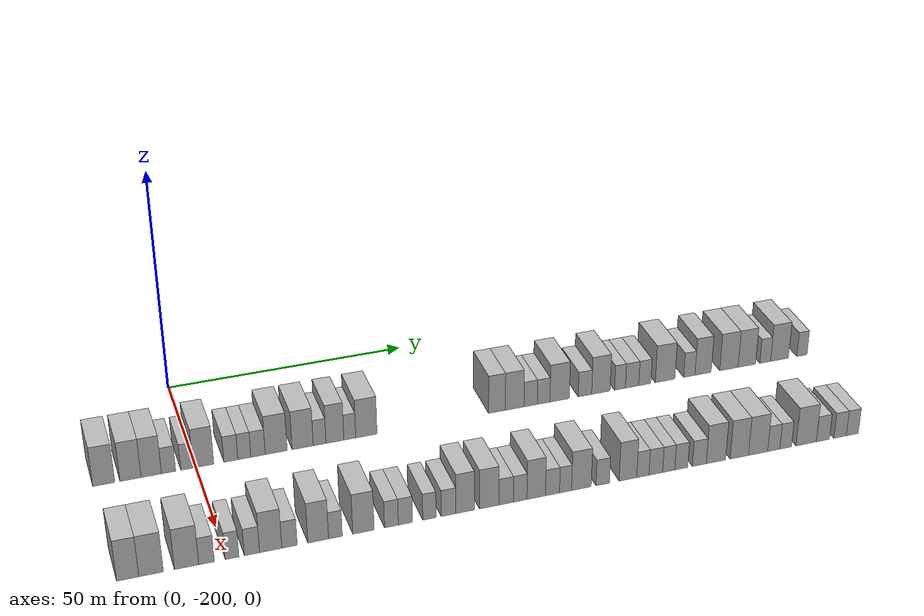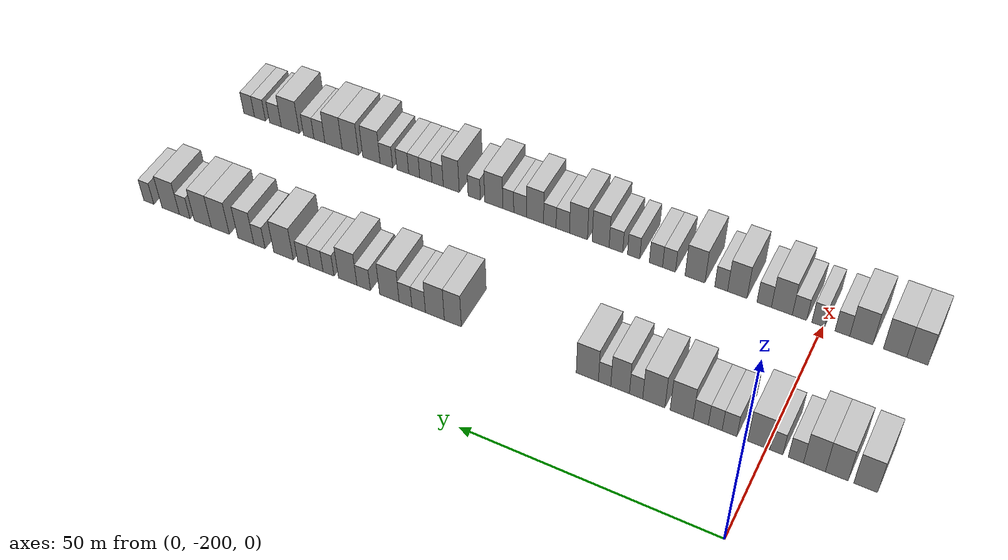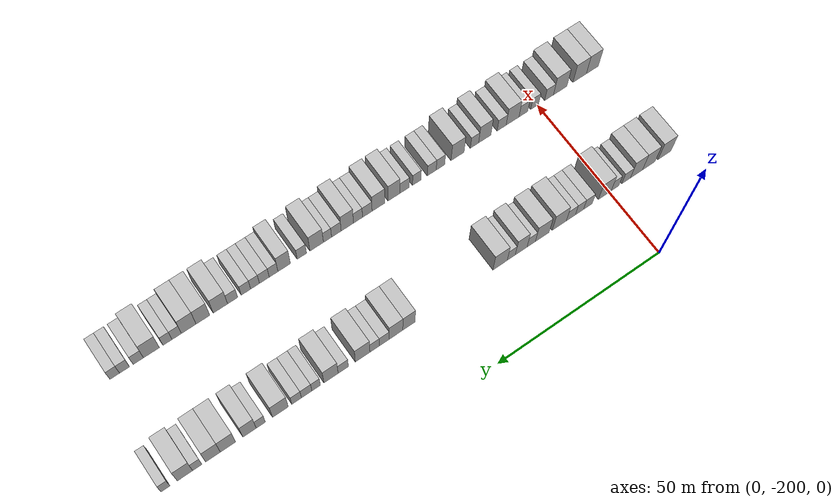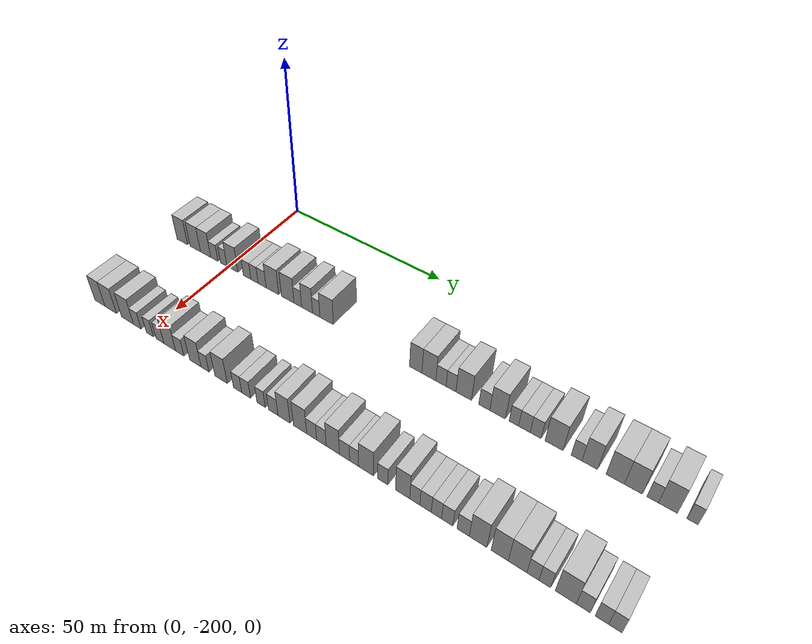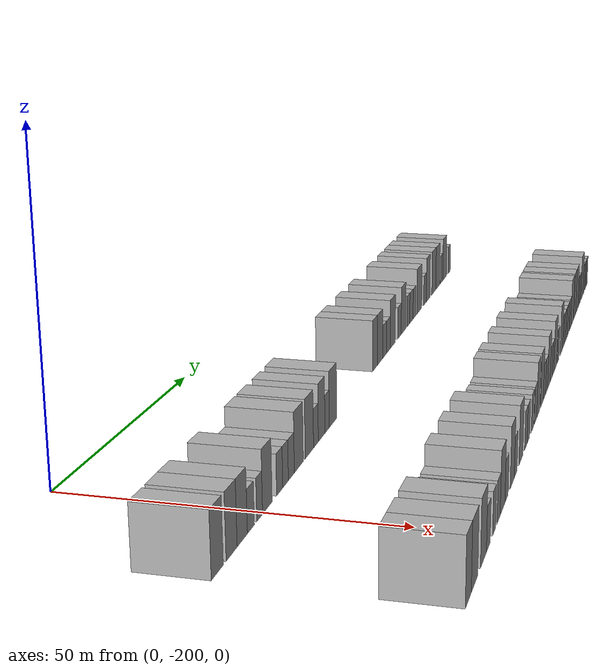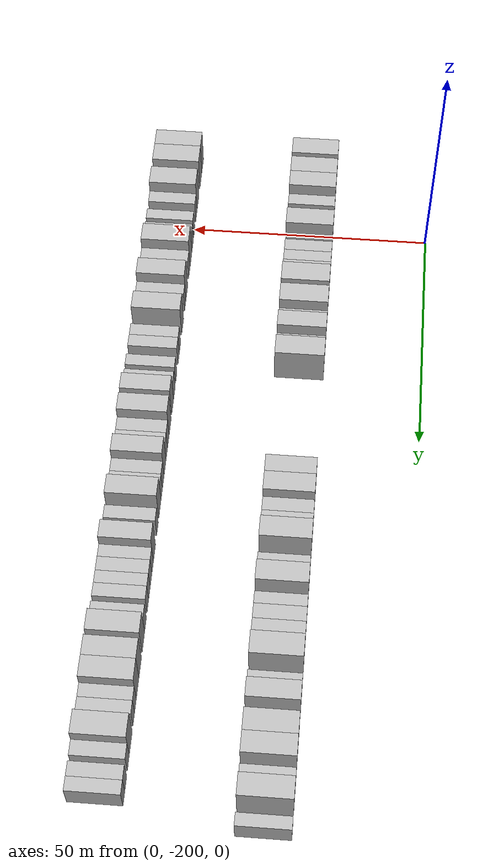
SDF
<sdf version="1.6">
 <world name="default">
  <model name="building_1">
   <static>1</static>
   <pose>25.0000 -217.8854 0 0.000000 0.000000 0.000000</pose>
   <link name="link">
    <pose>0 0 4.50 0 0 0</pose>
    <collision name="collision"><geometry><box><size>10.0000 4.2292 9.0000</size></box></geometry></collision>
    <visual name="visual">
     <cast_shadows>0</cast_shadows>
     <geometry><box><size>10.0000 4.2292 9.0000</size></box></geometry>
     <material>
      <script>
       <uri>model://HANNAS_wall/materials/scripts</uri>
       <uri>model://HANNAS_wall/materials/textures</uri>
       <name>vrc/HANNAS_wall</name>
      </script>
     </material>
    </visual>
   </link>
  </model>
  <model name="building_2">
   <static>1</static>
   <pose>25.0000 -212.7243 0 0.000000 0.000000 0.000000</pose>
   <link name="link">
    <pose>0 0 4.50 0 0 0</pose>
    <collision name="collision"><geometry><box><size>10.0000 4.0931 9.0000</size></box></geometry></collision>
    <visual name="visual">
     <cast_shadows>0</cast_shadows>
     <geometry><box><size>10.0000 4.0931 9.0000</size></box></geometry>
     <material>
      <script>
       <uri>model://HANNAS_wall/materials/scripts</uri>
       <uri>model://HANNAS_wall/materials/textures</uri>
       <name>vrc/HANNAS_wall</name>
      </script>
     </material>
    </visual>
   </link>
  </model>
  <model name="building_3">
   <static>1</static>
   <pose>25.0000 -208.7025 0 0.000000 0.000000 0.000000</pose>
   <link name="link">
    <pose>0 0 4.50 0 0 0</pose>
    <collision name="collision"><geometry><box><size>10.0000 3.9504 9.0000</size></box></geometry></collision>
    <visual name="visual">
     <cast_shadows>0</cast_shadows>
     <geometry><box><size>10.0000 3.9504 9.0000</size></box></geometry>
     <material>
      <script>
       <uri>model://HANNAS_wall/materials/scripts</uri>
       <uri>model://HANNAS_wall/materials/textures</uri>
       <name>vrc/HANNAS_wall</name>
      </script>
     </material>
    </visual>
   </link>
  </model>
  <model name="building_4">
   <static>1</static>
   <pose>25.0000 -205.3398 0 0.000000 0.000000 0.000000</pose>
   <link name="link">
    <pose>0 0 3.00 0 0 0</pose>
    <collision name="collision"><geometry><box><size>10.0000 2.7752 6.0000</size></box></geometry></collision>
    <visual name="visual">
     <cast_shadows>0</cast_shadows>
     <geometry><box><size>10.0000 2.7752 6.0000</size></box></geometry>
     <material>
      <script>
       <uri>model://HANNAS_wall/materials/scripts</uri>
       <uri>model://HANNAS_wall/materials/textures</uri>
       <name>vrc/HANNAS_wall</name>
      </script>
     </material>
    </visual>
   </link>
  </model>
  <model name="building_5">
   <static>1</static>
   <pose>25.0000 -201.7482 0 0.000000 0.000000 0.000000</pose>
   <link name="link">
    <pose>0 0 3.00 0 0 0</pose>
    <collision name="collision"><geometry><box><size>10.0000 2.4080 6.0000</size></box></geometry></collision>
    <visual name="visual">
     <cast_shadows>0</cast_shadows>
     <geometry><box><size>10.0000 2.4080 6.0000</size></box></geometry>
     <material>
      <script>
       <uri>model://HANNAS_wall/materials/scripts</uri>
       <uri>model://HANNAS_wall/materials/textures</uri>
       <name>vrc/HANNAS_wall</name>
      </script>
     </material>
    </visual>
   </link>
  </model>
  <model name="building_6">
   <static>1</static>
   <pose>25.0000 -198.4909 0 0.000000 0.000000 0.000000</pose>
   <link name="link">
    <pose>0 0 4.50 0 0 0</pose>
    <collision name="collision"><geometry><box><size>10.0000 4.1066 9.0000</size></box></geometry></collision>
    <visual name="visual">
     <cast_shadows>0</cast_shadows>
     <geometry><box><size>10.0000 4.1066 9.0000</size></box></geometry>
     <material>
      <script>
       <uri>model://HANNAS_wall/materials/scripts</uri>
       <uri>model://HANNAS_wall/materials/textures</uri>
       <name>vrc/HANNAS_wall</name>
      </script>
     </material>
    </visual>
   </link>
  </model>
  <model name="building_7">
   <static>1</static>
   <pose>25.0000 -193.0438 0 0.000000 0.000000 0.000000</pose>
   <link name="link">
    <pose>0 0 3.00 0 0 0</pose>
    <collision name="collision"><geometry><box><size>10.0000 2.7875 6.0000</size></box></geometry></collision>
    <visual name="visual">
     <cast_shadows>0</cast_shadows>
     <geometry><box><size>10.0000 2.7875 6.0000</size></box></geometry>
     <material>
      <script>
       <uri>model://HANNAS_wall/materials/scripts</uri>
       <uri>model://HANNAS_wall/materials/textures</uri>
       <name>vrc/HANNAS_wall</name>
      </script>
     </material>
    </visual>
   </link>
  </model>
  <model name="building_8">
   <static>1</static>
   <pose>25.0000 -190.3522 0 0.000000 0.000000 0.000000</pose>
   <link name="link">
    <pose>0 0 3.00 0 0 0</pose>
    <collision name="collision"><geometry><box><size>10.0000 2.5958 6.0000</size></box></geometry></collision>
    <visual name="visual">
     <cast_shadows>0</cast_shadows>
     <geometry><box><size>10.0000 2.5958 6.0000</size></box></geometry>
     <material>
      <script>
       <uri>model://HANNAS_wall/materials/scripts</uri>
       <uri>model://HANNAS_wall/materials/textures</uri>
       <name>vrc/HANNAS_wall</name>
      </script>
     </material>
    </visual>
   </link>
  </model>
  <model name="building_9">
   <static>1</static>
   <pose>25.0000 -187.6102 0 0.000000 0.000000 0.000000</pose>
   <link name="link">
    <pose>0 0 3.00 0 0 0</pose>
    <collision name="collision"><geometry><box><size>10.0000 2.8883 6.0000</size></box></geometry></collision>
    <visual name="visual">
     <cast_shadows>0</cast_shadows>
     <geometry><box><size>10.0000 2.8883 6.0000</size></box></geometry>
     <material>
      <script>
       <uri>model://HANNAS_wall/materials/scripts</uri>
       <uri>model://HANNAS_wall/materials/textures</uri>
       <name>vrc/HANNAS_wall</name>
      </script>
     </material>
    </visual>
   </link>
  </model>
  <model name="building_10">
   <static>1</static>
   <pose>25.0000 -183.9573 0 0.000000 0.000000 0.000000</pose>
   <link name="link">
    <pose>0 0 4.50 0 0 0</pose>
    <collision name="collision"><geometry><box><size>10.0000 4.4174 9.0000</size></box></geometry></collision>
    <visual name="visual">
     <cast_shadows>0</cast_shadows>
     <geometry><box><size>10.0000 4.4174 9.0000</size></box></geometry>
     <material>
      <script>
       <uri>model://HANNAS_wall/materials/scripts</uri>
       <uri>model://HANNAS_wall/materials/textures</uri>
       <name>vrc/HANNAS_wall</name>
      </script>
     </material>
    </visual>
   </link>
  </model>
  <model name="building_11">
   <static>1</static>
   <pose>25.0000 -178.5948 0 0.000000 0.000000 0.000000</pose>
   <link name="link">
    <pose>0 0 4.50 0 0 0</pose>
    <collision name="collision"><geometry><box><size>10.0000 4.3075 9.0000</size></box></geometry></collision>
    <visual name="visual">
     <cast_shadows>0</cast_shadows>
     <geometry><box><size>10.0000 4.3075 9.0000</size></box></geometry>
     <material>
      <script>
       <uri>model://HANNAS_wall/materials/scripts</uri>
       <uri>model://HANNAS_wall/materials/textures</uri>
       <name>vrc/HANNAS_wall</name>
      </script>
     </material>
    </visual>
   </link>
  </model>
  <model name="building_12">
   <static>1</static>
   <pose>25.0000 -175.1454 0 0.000000 0.000000 0.000000</pose>
   <link name="link">
    <pose>0 0 3.00 0 0 0</pose>
    <collision name="collision"><geometry><box><size>10.0000 2.5914 6.0000</size></box></geometry></collision>
    <visual name="visual">
     <cast_shadows>0</cast_shadows>
     <geometry><box><size>10.0000 2.5914 6.0000</size></box></geometry>
     <material>
      <script>
       <uri>model://HANNAS_wall/materials/scripts</uri>
       <uri>model://HANNAS_wall/materials/textures</uri>
       <name>vrc/HANNAS_wall</name>
      </script>
     </material>
    </visual>
   </link>
  </model>
  <model name="building_13">
   <static>1</static>
   <pose>25.0000 -172.0141 0 0.000000 0.000000 0.000000</pose>
   <link name="link">
    <pose>0 0 4.50 0 0 0</pose>
    <collision name="collision"><geometry><box><size>10.0000 3.6710 9.0000</size></box></geometry></collision>
    <visual name="visual">
     <cast_shadows>0</cast_shadows>
     <geometry><box><size>10.0000 3.6710 9.0000</size></box></geometry>
     <material>
      <script>
       <uri>model://HANNAS_wall/materials/scripts</uri>
       <uri>model://HANNAS_wall/materials/textures</uri>
       <name>vrc/HANNAS_wall</name>
      </script>
     </material>
    </visual>
   </link>
  </model>
  <model name="building_14">
   <static>1</static>
   <pose>25.0000 -168.9576 0 0.000000 0.000000 0.000000</pose>
   <link name="link">
    <pose>0 0 3.00 0 0 0</pose>
    <collision name="collision"><geometry><box><size>10.0000 2.4421 6.0000</size></box></geometry></collision>
    <visual name="visual">
     <cast_shadows>0</cast_shadows>
     <geometry><box><size>10.0000 2.4421 6.0000</size></box></geometry>
     <material>
      <script>
       <uri>model://HANNAS_wall/materials/scripts</uri>
       <uri>model://HANNAS_wall/materials/textures</uri>
       <name>vrc/HANNAS_wall</name>
      </script>
     </material>
    </visual>
   </link>
  </model>
  <model name="building_15">
   <static>1</static>
   <pose>25.0000 -165.5291 0 0.000000 0.000000 0.000000</pose>
   <link name="link">
    <pose>0 0 4.50 0 0 0</pose>
    <collision name="collision"><geometry><box><size>10.0000 4.4150 9.0000</size></box></geometry></collision>
    <visual name="visual">
     <cast_shadows>0</cast_shadows>
     <geometry><box><size>10.0000 4.4150 9.0000</size></box></geometry>
     <material>
      <script>
       <uri>model://HANNAS_wall/materials/scripts</uri>
       <uri>model://HANNAS_wall/materials/textures</uri>
       <name>vrc/HANNAS_wall</name>
      </script>
     </material>
    </visual>
   </link>
  </model>
  <model name="building_16">
   <static>1</static>
   <pose>25.0000 -137.9047 0 0.000000 0.000000 0.000000</pose>
   <link name="link">
    <pose>0 0 4.50 0 0 0</pose>
    <collision name="collision"><geometry><box><size>10.0000 3.6113 9.0000</size></box></geometry></collision>
    <visual name="visual">
     <cast_shadows>0</cast_shadows>
     <geometry><box><size>10.0000 3.6113 9.0000</size></box></geometry>
     <material>
      <script>
       <uri>model://HANNAS_wall/materials/scripts</uri>
       <uri>model://HANNAS_wall/materials/textures</uri>
       <name>vrc/HANNAS_wall</name>
      </script>
     </material>
    </visual>
   </link>
  </model>
  <model name="building_17">
   <static>1</static>
   <pose>25.0000 -134.0874 0 0.000000 0.000000 0.000000</pose>
   <link name="link">
    <pose>0 0 4.50 0 0 0</pose>
    <collision name="collision"><geometry><box><size>10.0000 4.0233 9.0000</size></box></geometry></collision>
    <visual name="visual">
     <cast_shadows>0</cast_shadows>
     <geometry><box><size>10.0000 4.0233 9.0000</size></box></geometry>
     <material>
      <script>
       <uri>model://HANNAS_wall/materials/scripts</uri>
       <uri>model://HANNAS_wall/materials/textures</uri>
       <name>vrc/HANNAS_wall</name>
      </script>
     </material>
    </visual>
   </link>
  </model>
  <model name="building_18">
   <static>1</static>
   <pose>25.0000 -130.6236 0 0.000000 0.000000 0.000000</pose>
   <link name="link">
    <pose>0 0 3.00 0 0 0</pose>
    <collision name="collision"><geometry><box><size>10.0000 2.9042 6.0000</size></box></geometry></collision>
    <visual name="visual">
     <cast_shadows>0</cast_shadows>
     <geometry><box><size>10.0000 2.9042 6.0000</size></box></geometry>
     <material>
      <script>
       <uri>model://HANNAS_wall/materials/scripts</uri>
       <uri>model://HANNAS_wall/materials/textures</uri>
       <name>vrc/HANNAS_wall</name>
      </script>
     </material>
    </visual>
   </link>
  </model>
  <model name="building_19">
   <static>1</static>
   <pose>25.0000 -127.7901 0 0.000000 0.000000 0.000000</pose>
   <link name="link">
    <pose>0 0 3.00 0 0 0</pose>
    <collision name="collision"><geometry><box><size>10.0000 2.7628 6.0000</size></box></geometry></collision>
    <visual name="visual">
     <cast_shadows>0</cast_shadows>
     <geometry><box><size>10.0000 2.7628 6.0000</size></box></geometry>
     <material>
      <script>
       <uri>model://HANNAS_wall/materials/scripts</uri>
       <uri>model://HANNAS_wall/materials/textures</uri>
       <name>vrc/HANNAS_wall</name>
      </script>
     </material>
    </visual>
   </link>
  </model>
  <model name="building_20">
   <static>1</static>
   <pose>25.0000 -124.2791 0 0.000000 0.000000 0.000000</pose>
   <link name="link">
    <pose>0 0 4.50 0 0 0</pose>
    <collision name="collision"><geometry><box><size>10.0000 4.2591 9.0000</size></box></geometry></collision>
    <visual name="visual">
     <cast_shadows>0</cast_shadows>
     <geometry><box><size>10.0000 4.2591 9.0000</size></box></geometry>
     <material>
      <script>
       <uri>model://HANNAS_wall/materials/scripts</uri>
       <uri>model://HANNAS_wall/materials/textures</uri>
       <name>vrc/HANNAS_wall</name>
      </script>
     </material>
    </visual>
   </link>
  </model>
  <model name="building_21">
   <static>1</static>
   <pose>25.0000 -118.6616 0 0.000000 0.000000 0.000000</pose>
   <link name="link">
    <pose>0 0 3.00 0 0 0</pose>
    <collision name="collision"><geometry><box><size>10.0000 2.9758 6.0000</size></box></geometry></collision>
    <visual name="visual">
     <cast_shadows>0</cast_shadows>
     <geometry><box><size>10.0000 2.9758 6.0000</size></box></geometry>
     <material>
      <script>
       <uri>model://HANNAS_wall/materials/scripts</uri>
       <uri>model://HANNAS_wall/materials/textures</uri>
       <name>vrc/HANNAS_wall</name>
      </script>
     </material>
    </visual>
   </link>
  </model>
  <model name="building_22">
   <static>1</static>
   <pose>25.0000 -115.1251 0 0.000000 0.000000 0.000000</pose>
   <link name="link">
    <pose>0 0 4.50 0 0 0</pose>
    <collision name="collision"><geometry><box><size>10.0000 4.0973 9.0000</size></box></geometry></collision>
    <visual name="visual">
     <cast_shadows>0</cast_shadows>
     <geometry><box><size>10.0000 4.0973 9.0000</size></box></geometry>
     <material>
      <script>
       <uri>model://HANNAS_wall/materials/scripts</uri>
       <uri>model://HANNAS_wall/materials/textures</uri>
       <name>vrc/HANNAS_wall</name>
      </script>
     </material>
    </visual>
   </link>
  </model>
  <model name="building_23">
   <static>1</static>
   <pose>25.0000 -110.8517 0 0.000000 0.000000 0.000000</pose>
   <link name="link">
    <pose>0 0 3.00 0 0 0</pose>
    <collision name="collision"><geometry><box><size>10.0000 2.4496 6.0000</size></box></geometry></collision>
    <visual name="visual">
     <cast_shadows>0</cast_shadows>
     <geometry><box><size>10.0000 2.4496 6.0000</size></box></geometry>
     <material>
      <script>
       <uri>model://HANNAS_wall/materials/scripts</uri>
       <uri>model://HANNAS_wall/materials/textures</uri>
       <name>vrc/HANNAS_wall</name>
      </script>
     </material>
    </visual>
   </link>
  </model>
  <model name="building_24">
   <static>1</static>
   <pose>25.0000 -108.1369 0 0.000000 0.000000 0.000000</pose>
   <link name="link">
    <pose>0 0 3.00 0 0 0</pose>
    <collision name="collision"><geometry><box><size>10.0000 2.9800 6.0000</size></box></geometry></collision>
    <visual name="visual">
     <cast_shadows>0</cast_shadows>
     <geometry><box><size>10.0000 2.9800 6.0000</size></box></geometry>
     <material>
      <script>
       <uri>model://HANNAS_wall/materials/scripts</uri>
       <uri>model://HANNAS_wall/materials/textures</uri>
       <name>vrc/HANNAS_wall</name>
      </script>
     </material>
    </visual>
   </link>
  </model>
  <model name="building_25">
   <static>1</static>
   <pose>25.0000 -105.2739 0 0.000000 0.000000 0.000000</pose>
   <link name="link">
    <pose>0 0 3.00 0 0 0</pose>
    <collision name="collision"><geometry><box><size>10.0000 2.7460 6.0000</size></box></geometry></collision>
    <visual name="visual">
     <cast_shadows>0</cast_shadows>
     <geometry><box><size>10.0000 2.7460 6.0000</size></box></geometry>
     <material>
      <script>
       <uri>model://HANNAS_wall/materials/scripts</uri>
       <uri>model://HANNAS_wall/materials/textures</uri>
       <name>vrc/HANNAS_wall</name>
      </script>
     </material>
    </visual>
   </link>
  </model>
  <model name="building_26">
   <static>1</static>
   <pose>25.0000 -100.6678 0 0.000000 0.000000 0.000000</pose>
   <link name="link">
    <pose>0 0 4.50 0 0 0</pose>
    <collision name="collision"><geometry><box><size>10.0000 4.4663 9.0000</size></box></geometry></collision>
    <visual name="visual">
     <cast_shadows>0</cast_shadows>
     <geometry><box><size>10.0000 4.4663 9.0000</size></box></geometry>
     <material>
      <script>
       <uri>model://HANNAS_wall/materials/scripts</uri>
       <uri>model://HANNAS_wall/materials/textures</uri>
       <name>vrc/HANNAS_wall</name>
      </script>
     </material>
    </visual>
   </link>
  </model>
  <model name="building_27">
   <static>1</static>
   <pose>25.0000 -95.1446 0 0.000000 0.000000 0.000000</pose>
   <link name="link">
    <pose>0 0 3.00 0 0 0</pose>
    <collision name="collision"><geometry><box><size>10.0000 2.5802 6.0000</size></box></geometry></collision>
    <visual name="visual">
     <cast_shadows>0</cast_shadows>
     <geometry><box><size>10.0000 2.5802 6.0000</size></box></geometry>
     <material>
      <script>
       <uri>model://HANNAS_wall/materials/scripts</uri>
       <uri>model://HANNAS_wall/materials/textures</uri>
       <name>vrc/HANNAS_wall</name>
      </script>
     </material>
    </visual>
   </link>
  </model>
  <model name="building_28">
   <static>1</static>
   <pose>25.0000 -91.9879 0 0.000000 0.000000 0.000000</pose>
   <link name="link">
    <pose>0 0 4.50 0 0 0</pose>
    <collision name="collision"><geometry><box><size>10.0000 3.7331 9.0000</size></box></geometry></collision>
    <visual name="visual">
     <cast_shadows>0</cast_shadows>
     <geometry><box><size>10.0000 3.7331 9.0000</size></box></geometry>
     <material>
      <script>
       <uri>model://HANNAS_wall/materials/scripts</uri>
       <uri>model://HANNAS_wall/materials/textures</uri>
       <name>vrc/HANNAS_wall</name>
      </script>
     </material>
    </visual>
   </link>
  </model>
  <model name="building_29">
   <static>1</static>
   <pose>25.0000 -86.0032 0 0.000000 0.000000 0.000000</pose>
   <link name="link">
    <pose>0 0 4.50 0 0 0</pose>
    <collision name="collision"><geometry><box><size>10.0000 4.2364 9.0000</size></box></geometry></collision>
    <visual name="visual">
     <cast_shadows>0</cast_shadows>
     <geometry><box><size>10.0000 4.2364 9.0000</size></box></geometry>
     <material>
      <script>
       <uri>model://HANNAS_wall/materials/scripts</uri>
       <uri>model://HANNAS_wall/materials/textures</uri>
       <name>vrc/HANNAS_wall</name>
      </script>
     </material>
    </visual>
   </link>
  </model>
  <model name="building_30">
   <static>1</static>
   <pose>25.0000 -81.8449 0 0.000000 0.000000 0.000000</pose>
   <link name="link">
    <pose>0 0 4.50 0 0 0</pose>
    <collision name="collision"><geometry><box><size>10.0000 4.0802 9.0000</size></box></geometry></collision>
    <visual name="visual">
     <cast_shadows>0</cast_shadows>
     <geometry><box><size>10.0000 4.0802 9.0000</size></box></geometry>
     <material>
      <script>
       <uri>model://HANNAS_wall/materials/scripts</uri>
       <uri>model://HANNAS_wall/materials/textures</uri>
       <name>vrc/HANNAS_wall</name>
      </script>
     </material>
    </visual>
   </link>
  </model>
  <model name="building_31">
   <static>1</static>
   <pose>25.0000 -77.5359 0 0.000000 0.000000 0.000000</pose>
   <link name="link">
    <pose>0 0 3.00 0 0 0</pose>
    <collision name="collision"><geometry><box><size>10.0000 2.5377 6.0000</size></box></geometry></collision>
    <visual name="visual">
     <cast_shadows>0</cast_shadows>
     <geometry><box><size>10.0000 2.5377 6.0000</size></box></geometry>
     <material>
      <script>
       <uri>model://HANNAS_wall/materials/scripts</uri>
       <uri>model://HANNAS_wall/materials/textures</uri>
       <name>vrc/HANNAS_wall</name>
      </script>
     </material>
    </visual>
   </link>
  </model>
  <model name="building_32">
   <static>1</static>
   <pose>25.0000 -74.1695 0 0.000000 0.000000 0.000000</pose>
   <link name="link">
    <pose>0 0 4.50 0 0 0</pose>
    <collision name="collision"><geometry><box><size>10.0000 4.1952 9.0000</size></box></geometry></collision>
    <visual name="visual">
     <cast_shadows>0</cast_shadows>
     <geometry><box><size>10.0000 4.1952 9.0000</size></box></geometry>
     <material>
      <script>
       <uri>model://HANNAS_wall/materials/scripts</uri>
       <uri>model://HANNAS_wall/materials/textures</uri>
       <name>vrc/HANNAS_wall</name>
      </script>
     </material>
    </visual>
   </link>
  </model>
  <model name="building_33">
   <static>1</static>
   <pose>25.0000 -68.8646 0 0.000000 0.000000 0.000000</pose>
   <link name="link">
    <pose>0 0 3.00 0 0 0</pose>
    <collision name="collision"><geometry><box><size>10.0000 2.4146 6.0000</size></box></geometry></collision>
    <visual name="visual">
     <cast_shadows>0</cast_shadows>
     <geometry><box><size>10.0000 2.4146 6.0000</size></box></geometry>
     <material>
      <script>
       <uri>model://HANNAS_wall/materials/scripts</uri>
       <uri>model://HANNAS_wall/materials/textures</uri>
       <name>vrc/HANNAS_wall</name>
      </script>
     </material>
    </visual>
   </link>
  </model>
  <model name="building_109">
   <static>1</static>
   <pose>55.0000 -218.0077 0 0.000000 0.000000 0.000000</pose>
   <link name="link">
    <pose>0 0 4.50 0 0 0</pose>
    <collision name="collision"><geometry><box><size>10.0000 3.9846 9.0000</size></box></geometry></collision>
    <visual name="visual">
     <cast_shadows>0</cast_shadows>
     <geometry><box><size>10.0000 3.9846 9.0000</size></box></geometry>
     <material>
      <script>
       <uri>model://HANNAS_wall/materials/scripts</uri>
       <uri>model://HANNAS_wall/materials/textures</uri>
       <name>vrc/HANNAS_wall</name>
      </script>
     </material>
    </visual>
   </link>
  </model>
  <model name="building_110">
   <static>1</static>
   <pose>55.0000 -213.7967 0 0.000000 0.000000 0.000000</pose>
   <link name="link">
    <pose>0 0 4.50 0 0 0</pose>
    <collision name="collision"><geometry><box><size>10.0000 4.4373 9.0000</size></box></geometry></collision>
    <visual name="visual">
     <cast_shadows>0</cast_shadows>
     <geometry><box><size>10.0000 4.4373 9.0000</size></box></geometry>
     <material>
      <script>
       <uri>model://HANNAS_wall/materials/scripts</uri>
       <uri>model://HANNAS_wall/materials/textures</uri>
       <name>vrc/HANNAS_wall</name>
      </script>
     </material>
    </visual>
   </link>
  </model>
  <model name="building_111">
   <static>1</static>
   <pose>55.0000 -207.3578 0 0.000000 0.000000 0.000000</pose>
   <link name="link">
    <pose>0 0 4.50 0 0 0</pose>
    <collision name="collision"><geometry><box><size>10.0000 4.4405 9.0000</size></box></geometry></collision>
    <visual name="visual">
     <cast_shadows>0</cast_shadows>
     <geometry><box><size>10.0000 4.4405 9.0000</size></box></geometry>
     <material>
      <script>
       <uri>model://HANNAS_wall/materials/scripts</uri>
       <uri>model://HANNAS_wall/materials/textures</uri>
       <name>vrc/HANNAS_wall</name>
      </script>
     </material>
    </visual>
   </link>
  </model>
  <model name="building_112">
   <static>1</static>
   <pose>55.0000 -203.7084 0 0.000000 0.000000 0.000000</pose>
   <link name="link">
    <pose>0 0 3.00 0 0 0</pose>
    <collision name="collision"><geometry><box><size>10.0000 2.8583 6.0000</size></box></geometry></collision>
    <visual name="visual">
     <cast_shadows>0</cast_shadows>
     <geometry><box><size>10.0000 2.8583 6.0000</size></box></geometry>
     <material>
      <script>
       <uri>model://HANNAS_wall/materials/scripts</uri>
       <uri>model://HANNAS_wall/materials/textures</uri>
       <name>vrc/HANNAS_wall</name>
      </script>
     </material>
    </visual>
   </link>
  </model>
  <model name="building_113">
   <static>1</static>
   <pose>55.0000 -199.0148 0 0.000000 0.000000 0.000000</pose>
   <link name="link">
    <pose>0 0 3.00 0 0 0</pose>
    <collision name="collision"><geometry><box><size>10.0000 2.5290 6.0000</size></box></geometry></collision>
    <visual name="visual">
     <cast_shadows>0</cast_shadows>
     <geometry><box><size>10.0000 2.5290 6.0000</size></box></geometry>
     <material>
      <script>
       <uri>model://HANNAS_wall/materials/scripts</uri>
       <uri>model://HANNAS_wall/materials/textures</uri>
       <name>vrc/HANNAS_wall</name>
      </script>
     </material>
    </visual>
   </link>
  </model>
  <model name="building_114">
   <static>1</static>
   <pose>55.0000 -195.3354 0 0.000000 0.000000 0.000000</pose>
   <link name="link">
    <pose>0 0 3.00 0 0 0</pose>
    <collision name="collision"><geometry><box><size>10.0000 2.8298 6.0000</size></box></geometry></collision>
    <visual name="visual">
     <cast_shadows>0</cast_shadows>
     <geometry><box><size>10.0000 2.8298 6.0000</size></box></geometry>
     <material>
      <script>
       <uri>model://HANNAS_wall/materials/scripts</uri>
       <uri>model://HANNAS_wall/materials/textures</uri>
       <name>vrc/HANNAS_wall</name>
      </script>
     </material>
    </visual>
   </link>
  </model>
  <model name="building_115">
   <static>1</static>
   <pose>55.0000 -191.8404 0 0.000000 0.000000 0.000000</pose>
   <link name="link">
    <pose>0 0 4.50 0 0 0</pose>
    <collision name="collision"><geometry><box><size>10.0000 4.1602 9.0000</size></box></geometry></collision>
    <visual name="visual">
     <cast_shadows>0</cast_shadows>
     <geometry><box><size>10.0000 4.1602 9.0000</size></box></geometry>
     <material>
      <script>
       <uri>model://HANNAS_wall/materials/scripts</uri>
       <uri>model://HANNAS_wall/materials/textures</uri>
       <name>vrc/HANNAS_wall</name>
      </script>
     </material>
    </visual>
   </link>
  </model>
  <model name="building_116">
   <static>1</static>
   <pose>55.0000 -188.3152 0 0.000000 0.000000 0.000000</pose>
   <link name="link">
    <pose>0 0 3.00 0 0 0</pose>
    <collision name="collision"><geometry><box><size>10.0000 2.8903 6.0000</size></box></geometry></collision>
    <visual name="visual">
     <cast_shadows>0</cast_shadows>
     <geometry><box><size>10.0000 2.8903 6.0000</size></box></geometry>
     <material>
      <script>
       <uri>model://HANNAS_wall/materials/scripts</uri>
       <uri>model://HANNAS_wall/materials/textures</uri>
       <name>vrc/HANNAS_wall</name>
      </script>
     </material>
    </visual>
   </link>
  </model>
  <model name="building_117">
   <static>1</static>
   <pose>55.0000 -182.9065 0 0.000000 0.000000 0.000000</pose>
   <link name="link">
    <pose>0 0 4.50 0 0 0</pose>
    <collision name="collision"><geometry><box><size>10.0000 3.9271 9.0000</size></box></geometry></collision>
    <visual name="visual">
     <cast_shadows>0</cast_shadows>
     <geometry><box><size>10.0000 3.9271 9.0000</size></box></geometry>
     <material>
      <script>
       <uri>model://HANNAS_wall/materials/scripts</uri>
       <uri>model://HANNAS_wall/materials/textures</uri>
       <name>vrc/HANNAS_wall</name>
      </script>
     </material>
    </visual>
   </link>
  </model>
  <model name="building_118">
   <static>1</static>
   <pose>55.0000 -179.6349 0 0.000000 0.000000 0.000000</pose>
   <link name="link">
    <pose>0 0 3.00 0 0 0</pose>
    <collision name="collision"><geometry><box><size>10.0000 2.6162 6.0000</size></box></geometry></collision>
    <visual name="visual">
     <cast_shadows>0</cast_shadows>
     <geometry><box><size>10.0000 2.6162 6.0000</size></box></geometry>
     <material>
      <script>
       <uri>model://HANNAS_wall/materials/scripts</uri>
       <uri>model://HANNAS_wall/materials/textures</uri>
       <name>vrc/HANNAS_wall</name>
      </script>
     </material>
    </visual>
   </link>
  </model>
  <model name="building_119">
   <static>1</static>
   <pose>55.0000 -174.2780 0 0.000000 0.000000 0.000000</pose>
   <link name="link">
    <pose>0 0 4.50 0 0 0</pose>
    <collision name="collision"><geometry><box><size>10.0000 4.0974 9.0000</size></box></geometry></collision>
    <visual name="visual">
     <cast_shadows>0</cast_shadows>
     <geometry><box><size>10.0000 4.0974 9.0000</size></box></geometry>
     <material>
      <script>
       <uri>model://HANNAS_wall/materials/scripts</uri>
       <uri>model://HANNAS_wall/materials/textures</uri>
       <name>vrc/HANNAS_wall</name>
      </script>
     </material>
    </visual>
   </link>
  </model>
  <model name="building_120">
   <static>1</static>
   <pose>55.0000 -168.8904 0 0.000000 0.000000 0.000000</pose>
   <link name="link">
    <pose>0 0 3.00 0 0 0</pose>
    <collision name="collision"><geometry><box><size>10.0000 2.6778 6.0000</size></box></geometry></collision>
    <visual name="visual">
     <cast_shadows>0</cast_shadows>
     <geometry><box><size>10.0000 2.6778 6.0000</size></box></geometry>
     <material>
      <script>
       <uri>model://HANNAS_wall/materials/scripts</uri>
       <uri>model://HANNAS_wall/materials/textures</uri>
       <name>vrc/HANNAS_wall</name>
      </script>
     </material>
    </visual>
   </link>
  </model>
  <model name="building_121">
   <static>1</static>
   <pose>55.0000 -166.1648 0 0.000000 0.000000 0.000000</pose>
   <link name="link">
    <pose>0 0 3.00 0 0 0</pose>
    <collision name="collision"><geometry><box><size>10.0000 2.7735 6.0000</size></box></geometry></collision>
    <visual name="visual">
     <cast_shadows>0</cast_shadows>
     <geometry><box><size>10.0000 2.7735 6.0000</size></box></geometry>
     <material>
      <script>
       <uri>model://HANNAS_wall/materials/scripts</uri>
       <uri>model://HANNAS_wall/materials/textures</uri>
       <name>vrc/HANNAS_wall</name>
      </script>
     </material>
    </visual>
   </link>
  </model>
  <model name="building_122">
   <static>1</static>
   <pose>55.0000 -161.4734 0 0.000000 0.000000 0.000000</pose>
   <link name="link">
    <pose>0 0 3.00 0 0 0</pose>
    <collision name="collision"><geometry><box><size>10.0000 2.6092 6.0000</size></box></geometry></collision>
    <visual name="visual">
     <cast_shadows>0</cast_shadows>
     <geometry><box><size>10.0000 2.6092 6.0000</size></box></geometry>
     <material>
      <script>
       <uri>model://HANNAS_wall/materials/scripts</uri>
       <uri>model://HANNAS_wall/materials/textures</uri>
       <name>vrc/HANNAS_wall</name>
      </script>
     </material>
    </visual>
   </link>
  </model>
  <model name="building_123">
   <static>1</static>
   <pose>55.0000 -157.7151 0 0.000000 0.000000 0.000000</pose>
   <link name="link">
    <pose>0 0 3.00 0 0 0</pose>
    <collision name="collision"><geometry><box><size>10.0000 2.9074 6.0000</size></box></geometry></collision>
    <visual name="visual">
     <cast_shadows>0</cast_shadows>
     <geometry><box><size>10.0000 2.9074 6.0000</size></box></geometry>
     <material>
      <script>
       <uri>model://HANNAS_wall/materials/scripts</uri>
       <uri>model://HANNAS_wall/materials/textures</uri>
       <name>vrc/HANNAS_wall</name>
      </script>
     </material>
    </visual>
   </link>
  </model>
  <model name="building_124">
   <static>1</static>
   <pose>55.0000 -154.4368 0 0.000000 0.000000 0.000000</pose>
   <link name="link">
    <pose>0 0 4.50 0 0 0</pose>
    <collision name="collision"><geometry><box><size>10.0000 3.6492 9.0000</size></box></geometry></collision>
    <visual name="visual">
     <cast_shadows>0</cast_shadows>
     <geometry><box><size>10.0000 3.6492 9.0000</size></box></geometry>
     <material>
      <script>
       <uri>model://HANNAS_wall/materials/scripts</uri>
       <uri>model://HANNAS_wall/materials/textures</uri>
       <name>vrc/HANNAS_wall</name>
      </script>
     </material>
    </visual>
   </link>
  </model>
  <model name="building_125">
   <static>1</static>
   <pose>55.0000 -149.6703 0 0.000000 0.000000 0.000000</pose>
   <link name="link">
    <pose>0 0 4.50 0 0 0</pose>
    <collision name="collision"><geometry><box><size>10.0000 3.8837 9.0000</size></box></geometry></collision>
    <visual name="visual">
     <cast_shadows>0</cast_shadows>
     <geometry><box><size>10.0000 3.8837 9.0000</size></box></geometry>
     <material>
      <script>
       <uri>model://HANNAS_wall/materials/scripts</uri>
       <uri>model://HANNAS_wall/materials/textures</uri>
       <name>vrc/HANNAS_wall</name>
      </script>
     </material>
    </visual>
   </link>
  </model>
  <model name="building_126">
   <static>1</static>
   <pose>55.0000 -146.2731 0 0.000000 0.000000 0.000000</pose>
   <link name="link">
    <pose>0 0 3.00 0 0 0</pose>
    <collision name="collision"><geometry><box><size>10.0000 2.9107 6.0000</size></box></geometry></collision>
    <visual name="visual">
     <cast_shadows>0</cast_shadows>
     <geometry><box><size>10.0000 2.9107 6.0000</size></box></geometry>
     <material>
      <script>
       <uri>model://HANNAS_wall/materials/scripts</uri>
       <uri>model://HANNAS_wall/materials/textures</uri>
       <name>vrc/HANNAS_wall</name>
      </script>
     </material>
    </visual>
   </link>
  </model>
  <model name="building_127">
   <static>1</static>
   <pose>55.0000 -143.4478 0 0.000000 0.000000 0.000000</pose>
   <link name="link">
    <pose>0 0 3.00 0 0 0</pose>
    <collision name="collision"><geometry><box><size>10.0000 2.7399 6.0000</size></box></geometry></collision>
    <visual name="visual">
     <cast_shadows>0</cast_shadows>
     <geometry><box><size>10.0000 2.7399 6.0000</size></box></geometry>
     <material>
      <script>
       <uri>model://HANNAS_wall/materials/scripts</uri>
       <uri>model://HANNAS_wall/materials/textures</uri>
       <name>vrc/HANNAS_wall</name>
      </script>
     </material>
    </visual>
   </link>
  </model>
  <model name="building_128">
   <static>1</static>
   <pose>55.0000 -140.2117 0 0.000000 0.000000 0.000000</pose>
   <link name="link">
    <pose>0 0 4.50 0 0 0</pose>
    <collision name="collision"><geometry><box><size>10.0000 3.7324 9.0000</size></box></geometry></collision>
    <visual name="visual">
     <cast_shadows>0</cast_shadows>
     <geometry><box><size>10.0000 3.7324 9.0000</size></box></geometry>
     <material>
      <script>
       <uri>model://HANNAS_wall/materials/scripts</uri>
       <uri>model://HANNAS_wall/materials/textures</uri>
       <name>vrc/HANNAS_wall</name>
      </script>
     </material>
    </visual>
   </link>
  </model>
  <model name="building_129">
   <static>1</static>
   <pose>55.0000 -136.9093 0 0.000000 0.000000 0.000000</pose>
   <link name="link">
    <pose>0 0 3.00 0 0 0</pose>
    <collision name="collision"><geometry><box><size>10.0000 2.8723 6.0000</size></box></geometry></collision>
    <visual name="visual">
     <cast_shadows>0</cast_shadows>
     <geometry><box><size>10.0000 2.8723 6.0000</size></box></geometry>
     <material>
      <script>
       <uri>model://HANNAS_wall/materials/scripts</uri>
       <uri>model://HANNAS_wall/materials/textures</uri>
       <name>vrc/HANNAS_wall</name>
      </script>
     </material>
    </visual>
   </link>
  </model>
  <model name="building_130">
   <static>1</static>
   <pose>55.0000 -134.2499 0 0.000000 0.000000 0.000000</pose>
   <link name="link">
    <pose>0 0 3.00 0 0 0</pose>
    <collision name="collision"><geometry><box><size>10.0000 2.4464 6.0000</size></box></geometry></collision>
    <visual name="visual">
     <cast_shadows>0</cast_shadows>
     <geometry><box><size>10.0000 2.4464 6.0000</size></box></geometry>
     <material>
      <script>
       <uri>model://HANNAS_wall/materials/scripts</uri>
       <uri>model://HANNAS_wall/materials/textures</uri>
       <name>vrc/HANNAS_wall</name>
      </script>
     </material>
    </visual>
   </link>
  </model>
  <model name="building_131">
   <static>1</static>
   <pose>55.0000 -131.0062 0 0.000000 0.000000 0.000000</pose>
   <link name="link">
    <pose>0 0 4.50 0 0 0</pose>
    <collision name="collision"><geometry><box><size>10.0000 4.0410 9.0000</size></box></geometry></collision>
    <visual name="visual">
     <cast_shadows>0</cast_shadows>
     <geometry><box><size>10.0000 4.0410 9.0000</size></box></geometry>
     <material>
      <script>
       <uri>model://HANNAS_wall/materials/scripts</uri>
       <uri>model://HANNAS_wall/materials/textures</uri>
       <name>vrc/HANNAS_wall</name>
      </script>
     </material>
    </visual>
   </link>
  </model>
  <model name="building_132">
   <static>1</static>
   <pose>55.0000 -126.5923 0 0.000000 0.000000 0.000000</pose>
   <link name="link">
    <pose>0 0 3.00 0 0 0</pose>
    <collision name="collision"><geometry><box><size>10.0000 2.7866 6.0000</size></box></geometry></collision>
    <visual name="visual">
     <cast_shadows>0</cast_shadows>
     <geometry><box><size>10.0000 2.7866 6.0000</size></box></geometry>
     <material>
      <script>
       <uri>model://HANNAS_wall/materials/scripts</uri>
       <uri>model://HANNAS_wall/materials/textures</uri>
       <name>vrc/HANNAS_wall</name>
      </script>
     </material>
    </visual>
   </link>
  </model>
  <model name="building_133">
   <static>1</static>
   <pose>55.0000 -121.3647 0 0.000000 0.000000 0.000000</pose>
   <link name="link">
    <pose>0 0 4.50 0 0 0</pose>
    <collision name="collision"><geometry><box><size>10.0000 3.6687 9.0000</size></box></geometry></collision>
    <visual name="visual">
     <cast_shadows>0</cast_shadows>
     <geometry><box><size>10.0000 3.6687 9.0000</size></box></geometry>
     <material>
      <script>
       <uri>model://HANNAS_wall/materials/scripts</uri>
       <uri>model://HANNAS_wall/materials/textures</uri>
       <name>vrc/HANNAS_wall</name>
      </script>
     </material>
    </visual>
   </link>
  </model>
  <model name="building_134">
   <static>1</static>
   <pose>55.0000 -118.2428 0 0.000000 0.000000 0.000000</pose>
   <link name="link">
    <pose>0 0 3.00 0 0 0</pose>
    <collision name="collision"><geometry><box><size>10.0000 2.5751 6.0000</size></box></geometry></collision>
    <visual name="visual">
     <cast_shadows>0</cast_shadows>
     <geometry><box><size>10.0000 2.5751 6.0000</size></box></geometry>
     <material>
      <script>
       <uri>model://HANNAS_wall/materials/scripts</uri>
       <uri>model://HANNAS_wall/materials/textures</uri>
       <name>vrc/HANNAS_wall</name>
      </script>
     </material>
    </visual>
   </link>
  </model>
  <model name="building_135">
   <static>1</static>
   <pose>55.0000 -115.5240 0 0.000000 0.000000 0.000000</pose>
   <link name="link">
    <pose>0 0 3.00 0 0 0</pose>
    <collision name="collision"><geometry><box><size>10.0000 2.8625 6.0000</size></box></geometry></collision>
    <visual name="visual">
     <cast_shadows>0</cast_shadows>
     <geometry><box><size>10.0000 2.8625 6.0000</size></box></geometry>
     <material>
      <script>
       <uri>model://HANNAS_wall/materials/scripts</uri>
       <uri>model://HANNAS_wall/materials/textures</uri>
       <name>vrc/HANNAS_wall</name>
      </script>
     </material>
    </visual>
   </link>
  </model>
  <model name="building_136">
   <static>1</static>
   <pose>55.0000 -112.8126 0 0.000000 0.000000 0.000000</pose>
   <link name="link">
    <pose>0 0 3.00 0 0 0</pose>
    <collision name="collision"><geometry><box><size>10.0000 2.5603 6.0000</size></box></geometry></collision>
    <visual name="visual">
     <cast_shadows>0</cast_shadows>
     <geometry><box><size>10.0000 2.5603 6.0000</size></box></geometry>
     <material>
      <script>
       <uri>model://HANNAS_wall/materials/scripts</uri>
       <uri>model://HANNAS_wall/materials/textures</uri>
       <name>vrc/HANNAS_wall</name>
      </script>
     </material>
    </visual>
   </link>
  </model>
  <model name="building_137">
   <static>1</static>
   <pose>55.0000 -110.1557 0 0.000000 0.000000 0.000000</pose>
   <link name="link">
    <pose>0 0 3.00 0 0 0</pose>
    <collision name="collision"><geometry><box><size>10.0000 2.7534 6.0000</size></box></geometry></collision>
    <visual name="visual">
     <cast_shadows>0</cast_shadows>
     <geometry><box><size>10.0000 2.7534 6.0000</size></box></geometry>
     <material>
      <script>
       <uri>model://HANNAS_wall/materials/scripts</uri>
       <uri>model://HANNAS_wall/materials/textures</uri>
       <name>vrc/HANNAS_wall</name>
      </script>
     </material>
    </visual>
   </link>
  </model>
  <model name="building_138">
   <static>1</static>
   <pose>55.0000 -106.3062 0 0.000000 0.000000 0.000000</pose>
   <link name="link">
    <pose>0 0 3.00 0 0 0</pose>
    <collision name="collision"><geometry><box><size>10.0000 2.9457 6.0000</size></box></geometry></collision>
    <visual name="visual">
     <cast_shadows>0</cast_shadows>
     <geometry><box><size>10.0000 2.9457 6.0000</size></box></geometry>
     <material>
      <script>
       <uri>model://HANNAS_wall/materials/scripts</uri>
       <uri>model://HANNAS_wall/materials/textures</uri>
       <name>vrc/HANNAS_wall</name>
      </script>
     </material>
    </visual>
   </link>
  </model>
  <model name="building_139">
   <static>1</static>
   <pose>55.0000 -102.7674 0 0.000000 0.000000 0.000000</pose>
   <link name="link">
    <pose>0 0 4.50 0 0 0</pose>
    <collision name="collision"><geometry><box><size>10.0000 4.1318 9.0000</size></box></geometry></collision>
    <visual name="visual">
     <cast_shadows>0</cast_shadows>
     <geometry><box><size>10.0000 4.1318 9.0000</size></box></geometry>
     <material>
      <script>
       <uri>model://HANNAS_wall/materials/scripts</uri>
       <uri>model://HANNAS_wall/materials/textures</uri>
       <name>vrc/HANNAS_wall</name>
      </script>
     </material>
    </visual>
   </link>
  </model>
  <model name="building_140">
   <static>1</static>
   <pose>55.0000 -97.7328 0 0.000000 0.000000 0.000000</pose>
   <link name="link">
    <pose>0 0 4.50 0 0 0</pose>
    <collision name="collision"><geometry><box><size>10.0000 3.9375 9.0000</size></box></geometry></collision>
    <visual name="visual">
     <cast_shadows>0</cast_shadows>
     <geometry><box><size>10.0000 3.9375 9.0000</size></box></geometry>
     <material>
      <script>
       <uri>model://HANNAS_wall/materials/scripts</uri>
       <uri>model://HANNAS_wall/materials/textures</uri>
       <name>vrc/HANNAS_wall</name>
      </script>
     </material>
    </visual>
   </link>
  </model>
  <model name="building_141">
   <static>1</static>
   <pose>55.0000 -93.6757 0 0.000000 0.000000 0.000000</pose>
   <link name="link">
    <pose>0 0 4.50 0 0 0</pose>
    <collision name="collision"><geometry><box><size>10.0000 4.1766 9.0000</size></box></geometry></collision>
    <visual name="visual">
     <cast_shadows>0</cast_shadows>
     <geometry><box><size>10.0000 4.1766 9.0000</size></box></geometry>
     <material>
      <script>
       <uri>model://HANNAS_wall/materials/scripts</uri>
       <uri>model://HANNAS_wall/materials/textures</uri>
       <name>vrc/HANNAS_wall</name>
      </script>
     </material>
    </visual>
   </link>
  </model>
  <model name="building_142">
   <static>1</static>
   <pose>55.0000 -90.2623 0 0.000000 0.000000 0.000000</pose>
   <link name="link">
    <pose>0 0 3.00 0 0 0</pose>
    <collision name="collision"><geometry><box><size>10.0000 2.6503 6.0000</size></box></geometry></collision>
    <visual name="visual">
     <cast_shadows>0</cast_shadows>
     <geometry><box><size>10.0000 2.6503 6.0000</size></box></geometry>
     <material>
      <script>
       <uri>model://HANNAS_wall/materials/scripts</uri>
       <uri>model://HANNAS_wall/materials/textures</uri>
       <name>vrc/HANNAS_wall</name>
      </script>
     </material>
    </visual>
   </link>
  </model>
  <model name="building_143">
   <static>1</static>
   <pose>55.0000 -87.6568 0 0.000000 0.000000 0.000000</pose>
   <link name="link">
    <pose>0 0 3.00 0 0 0</pose>
    <collision name="collision"><geometry><box><size>10.0000 2.5605 6.0000</size></box></geometry></collision>
    <visual name="visual">
     <cast_shadows>0</cast_shadows>
     <geometry><box><size>10.0000 2.5605 6.0000</size></box></geometry>
     <material>
      <script>
       <uri>model://HANNAS_wall/materials/scripts</uri>
       <uri>model://HANNAS_wall/materials/textures</uri>
       <name>vrc/HANNAS_wall</name>
      </script>
     </material>
    </visual>
   </link>
  </model>
  <model name="building_144">
   <static>1</static>
   <pose>55.0000 -83.1441 0 0.000000 0.000000 0.000000</pose>
   <link name="link">
    <pose>0 0 4.50 0 0 0</pose>
    <collision name="collision"><geometry><box><size>10.0000 4.4650 9.0000</size></box></geometry></collision>
    <visual name="visual">
     <cast_shadows>0</cast_shadows>
     <geometry><box><size>10.0000 4.4650 9.0000</size></box></geometry>
     <material>
      <script>
       <uri>model://HANNAS_wall/materials/scripts</uri>
       <uri>model://HANNAS_wall/materials/textures</uri>
       <name>vrc/HANNAS_wall</name>
      </script>
     </material>
    </visual>
   </link>
  </model>
  <model name="building_145">
   <static>1</static>
   <pose>55.0000 -79.4576 0 0.000000 0.000000 0.000000</pose>
   <link name="link">
    <pose>0 0 3.00 0 0 0</pose>
    <collision name="collision"><geometry><box><size>10.0000 2.9078 6.0000</size></box></geometry></collision>
    <visual name="visual">
     <cast_shadows>0</cast_shadows>
     <geometry><box><size>10.0000 2.9078 6.0000</size></box></geometry>
     <material>
      <script>
       <uri>model://HANNAS_wall/materials/scripts</uri>
       <uri>model://HANNAS_wall/materials/textures</uri>
       <name>vrc/HANNAS_wall</name>
      </script>
     </material>
    </visual>
   </link>
  </model>
  <model name="building_146">
   <static>1</static>
   <pose>55.0000 -75.6225 0 0.000000 0.000000 0.000000</pose>
   <link name="link">
    <pose>0 0 3.00 0 0 0</pose>
    <collision name="collision"><geometry><box><size>10.0000 2.7624 6.0000</size></box></geometry></collision>
    <visual name="visual">
     <cast_shadows>0</cast_shadows>
     <geometry><box><size>10.0000 2.7624 6.0000</size></box></geometry>
     <material>
      <script>
       <uri>model://HANNAS_wall/materials/scripts</uri>
       <uri>model://HANNAS_wall/materials/textures</uri>
       <name>vrc/HANNAS_wall</name>
      </script>
     </material>
    </visual>
   </link>
  </model>
  <model name="building_147">
   <static>1</static>
   <pose>55.0000 -72.9026 0 0.000000 0.000000 0.000000</pose>
   <link name="link">
    <pose>0 0 3.00 0 0 0</pose>
    <collision name="collision"><geometry><box><size>10.0000 2.6773 6.0000</size></box></geometry></collision>
    <visual name="visual">
     <cast_shadows>0</cast_shadows>
     <geometry><box><size>10.0000 2.6773 6.0000</size></box></geometry>
     <material>
      <script>
       <uri>model://HANNAS_wall/materials/scripts</uri>
       <uri>model://HANNAS_wall/materials/textures</uri>
       <name>vrc/HANNAS_wall</name>
      </script>
     </material>
    </visual>
   </link>
  </model>
 </world>
</sdf>
